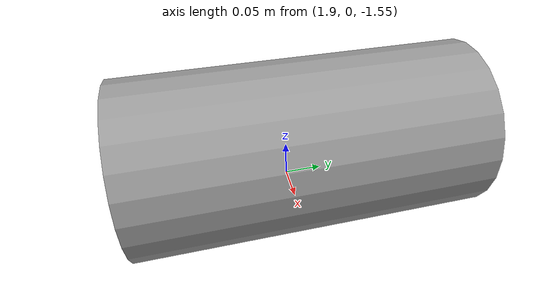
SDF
<?xml version='1.0'?>
<sdf version='1.7'>
  <model name='BR_Anchor'>
    <link name='br_link'>
      <inertial>
        <mass>1</mass>
        <inertia>
          <ixx>0.145833</ixx>
          <ixy>0</ixy>
          <ixz>0</ixz>
          <iyy>0.145833</iyy>
          <iyz>0</iyz>
          <izz>0.125</izz>
        </inertia>
        <pose>0 0 0 0 -0 0</pose>
      </inertial>
      <pose>1.98165 1.4e-05 -1.43822 1.1e-05 -0.9 -5e-06</pose>
      <gravity>0</gravity>
      <self_collide>0</self_collide>
      <static>1</static>
      <enable_wind>0</enable_wind>
      <visual name='visual'>
        <pose>0 0 0 1.57 -0 0</pose>
        <geometry>
          <cylinder>
            <radius>0.1</radius>
            <length>0.4</length>
          </cylinder>
        </geometry>
        <material>
          <lighting>1</lighting>
          <script>
            <uri>file://media/materials/scripts/gazebo.material</uri>
            <name>Gazebo/Grey</name>
          </script>
          <shader type='pixel'>
            <normal_map>__default__</normal_map>
          </shader>
          <ambient>0.3 0.3 0.3 1</ambient>
          <diffuse>0.7 0.7 0.7 1</diffuse>
          <specular>0.01 0.01 0.01 1</specular>
          <emissive>0 0 0 1</emissive>
        </material>
        <transparency>0</transparency>
        <cast_shadows>1</cast_shadows>
      </visual>
      <collision name='collision'>
        <geometry>
          <cylinder>
            <radius>0.1</radius>
            <length>0.4</length>
          </cylinder>
        </geometry>
        <surface>
          <contact>
            <collide_without_contact>true</collide_without_contact>
          </contact>
        </surface>
      </collision>
    </link>
    <link name='br_dummy'>
      <pose>1.98165 1.4e-05 -1.43822 1.1e-05 -0.9 -5e-06</pose>
    </link>
    <link name='br_prismatic'>
      <pose>1.98165 1.4e-05 -1.43822 1.1e-05 -0.9 -5e-06</pose>
    </link>
    <joint name='Universal Joint Bottom Right' type='universal'>
      <parent>br_link</parent>
      <child>br_dummy</child>
      <pose>0 0 0 0 -0 0</pose>
      <axis>
        <xyz>0 1 0</xyz>
        <limit>
          <lower>-1</lower>
          <upper>1</upper>
          <effort>-1</effort>
          <velocity>-1</velocity>
        </limit>
        <dynamics>
          <spring_reference>0</spring_reference>
          <spring_stiffness>0</spring_stiffness>
          <damping>0</damping>
          <friction>0</friction>
        </dynamics>
      </axis>
      <axis2>
        <xyz>0 0 1</xyz>
        <limit>
          <lower>-1</lower>
          <upper>1</upper>
          <effort>-1</effort>
          <velocity>-1</velocity>
        </limit>
        <dynamics>
          <spring_reference>0</spring_reference>
          <spring_stiffness>0</spring_stiffness>
          <damping>0</damping>
          <friction>0</friction>
        </dynamics>
      </axis2>
      <physics>
        <ode>
          <limit>
            <cfm>0</cfm>
            <erp>0.2</erp>
          </limit>
          <suspension>
            <cfm>0</cfm>
            <erp>0.2</erp>
          </suspension>
        </ode>
      </physics>
    </joint>
    <joint name='Prismatic Joint Bottom Right' type='prismatic'>
      <child>br_prismatic</child>
      <parent>br_dummy</parent>
      <pose>0 0 0 0 -0 0</pose>
      <axis>
        <xyz>0 1 0</xyz>
        <limit>
          <lower>-2</lower>
          <upper>2</upper>
          <effort>-1</effort>
          <velocity>-1</velocity>
        </limit>
        <dynamics>
          <spring_reference>0</spring_reference>
          <spring_stiffness>0</spring_stiffness>
          <damping>0</damping>
          <friction>0</friction>
        </dynamics>
      </axis>
      <physics>
        <ode>
          <limit>
            <cfm>0</cfm>
            <erp>0.2</erp>
          </limit>
          <suspension>
            <cfm>0</cfm>
            <erp>0.2</erp>
          </suspension>
        </ode>
      </physics>
    </joint>
    <static>0</static>
    <plugin filename="libignition-gazebo-detachable-joint-system.so" name="ignition::gazebo::systems::DetachableJoint">
       <parent_link>br_prismatic</parent_link>
       <child_model>wallbot</child_model>
       <child_link>link_1_0_clone_1</child_link>
       <topic>/wallbot_br_join/detach</topic>
    </plugin>
  </model>
</sdf>
